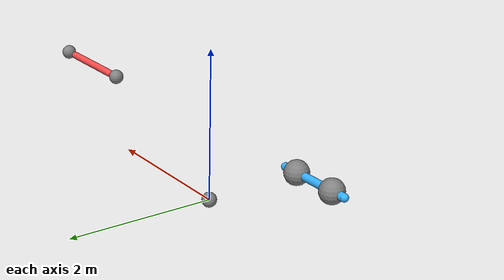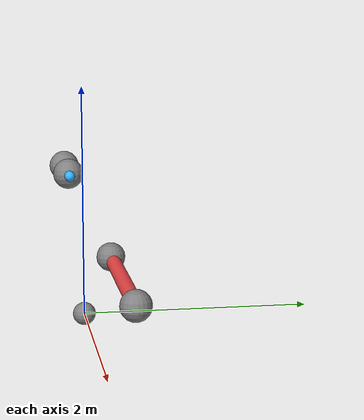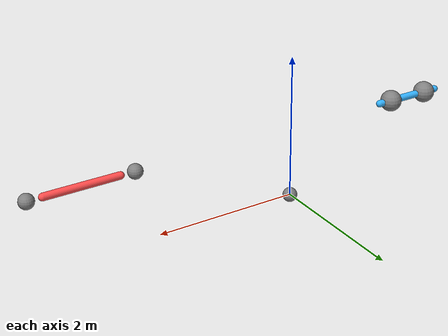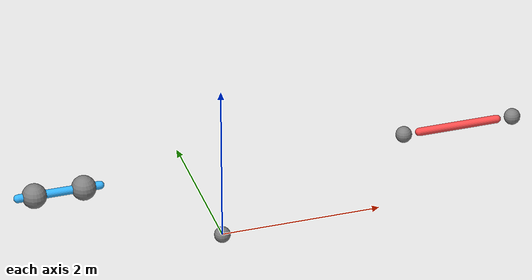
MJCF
<mujoco>
  <option gravity="0 0 -9.81"/>
  <worldbody>
    <body name="ground" pos="0 0 -10">
      <geom type="plane" size="30 30 0.1" rgba="0.8 0.8 0.8 1"/>
    </body>
    <body name="pivot" pos="0 0 0">
      <geom type="sphere" size="0.1" rgba="0.5 0.5 0.5 1"/>
    </body>
    <body name="rod_with_close_masses" pos="-2 0 1">
      <geom type="capsule" fromto="-0.5 0 0 0.5 0 0" size="0.05" density="0.3" rgba="0.2 0.7 1 1"/>
      <geom type="sphere" pos="-0.3 0 0" size="0.15" density="1.2"/>
      <geom type="sphere" pos="0.3 0 0" size="0.15" density="1.2"/>
      <joint name="rot_joint1" type="hinge" axis="0 0 1"/>
    </body>
    <body name="rod_with_far_masses" pos="3 0 1">
      <geom type="capsule" fromto="-0.5 0 0 0.5 0 0" size="0.05" density="0.25" rgba="1 0.3 0.3 1"/>
      <geom type="sphere" pos="-0.7 0 0" size="0.1" density="1.5"/>
      <geom type="sphere" pos="0.7 0 0" size="0.1" density="1.5"/>
      <joint name="rot_joint2" type="hinge" axis="0 0 1"/>
    </body>
  </worldbody>
</mujoco>
